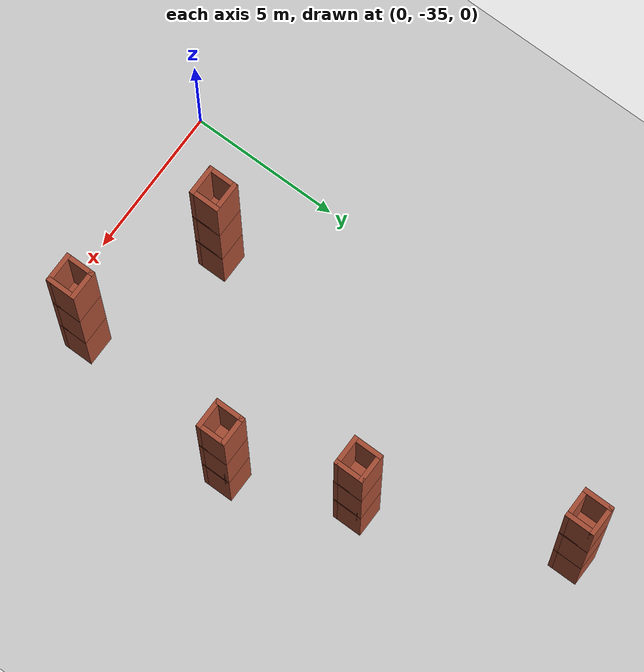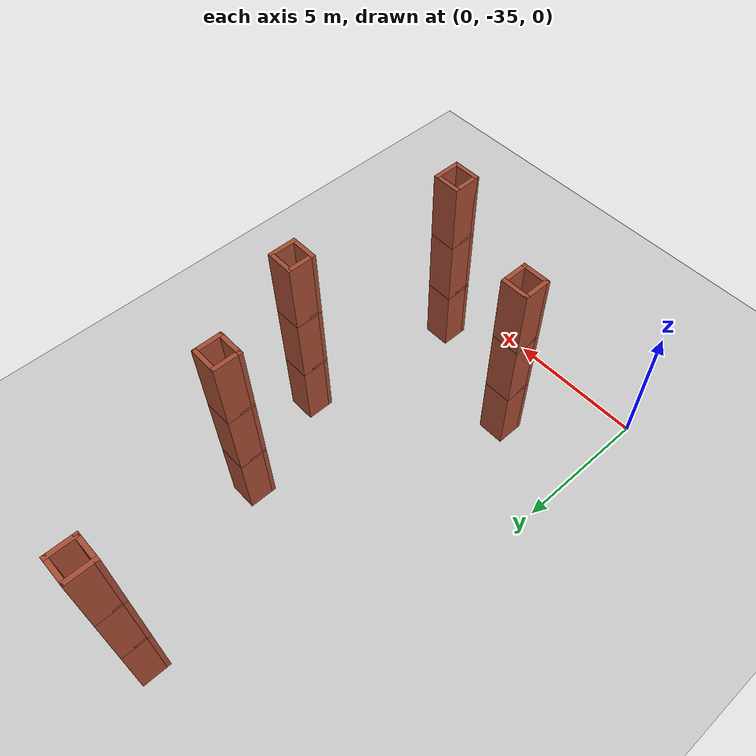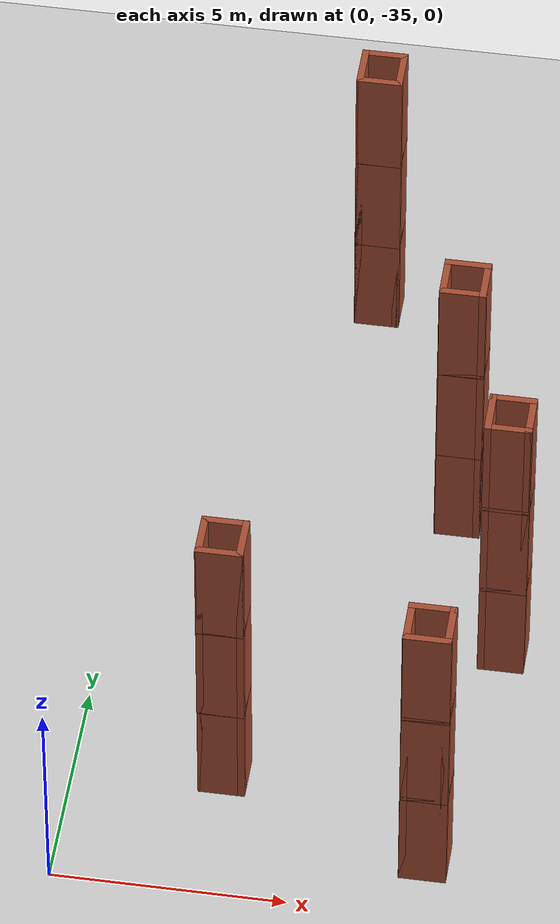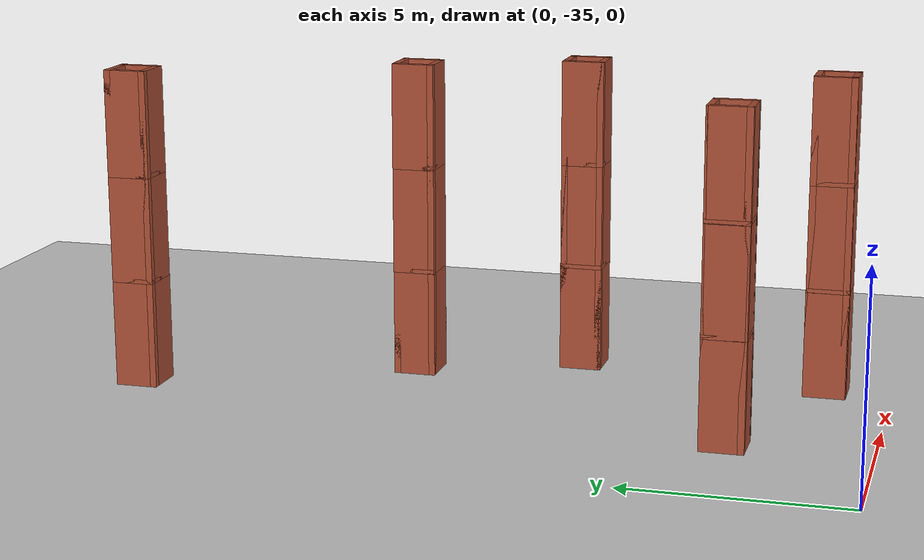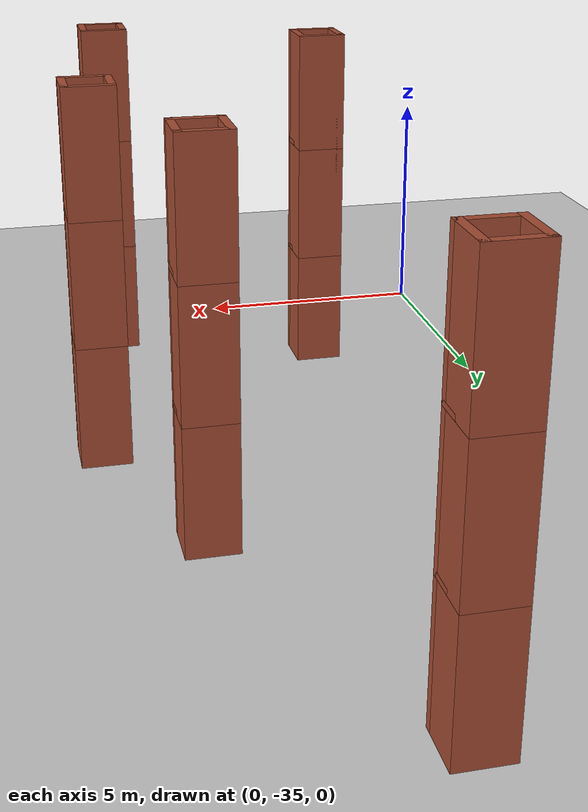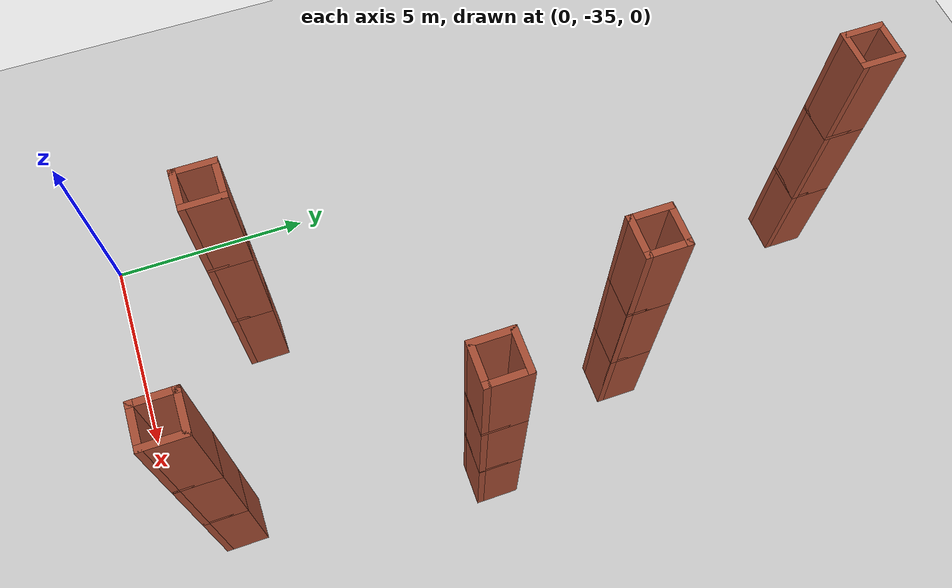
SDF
<sdf version="1.7">
 <world name="default">
  <model name="ground_plane">
   <static>1</static>
   <link name="link">
    <collision name="collision">
     <geometry><plane><normal>0 0 1</normal><size>100 100</size></plane></geometry>
     <surface>
      <contact><collide_bitmask>65535</collide_bitmask></contact>
      <friction><ode><mu>100</mu><mu2>50</mu2></ode></friction>
     </surface>
    </collision>
    <visual name="visual">
     <cast_shadows>0</cast_shadows>
     <geometry><plane><normal>0 0 1</normal><size>100 100</size></plane></geometry>
     <material>
      <script><uri>file://media/materials/scripts/gazebo.material</uri><name>Gazebo/Grey</name></script>
     </material>
    </visual>
   </link>
  </model>
  <model name="wall_model_clone">
   <pose>6.41502 -32.412 0 0 -0 0</pose>
   <link name="Floor_3">
    <collision name="Floor_3_Collision">
     <geometry><box><size>1 1 0.1</size></box></geometry>
     <pose>0 0 0.05 0 -0 0</pose>
    </collision>
    <visual name="Floor_3_Visual">
     <pose>0 0 0.05 0 -0 0</pose>
     <geometry><box><size>1 1 0.1</size></box></geometry>
     <material>
      <script><uri>file://media/materials/scripts/gazebo.material</uri><name>Gazebo/Bricks</name></script>
      <ambient>1 1 1 1</ambient>
     </material>
     <meta><layer>1</layer></meta>
    </visual>
    <pose>-3.21504 0.623396 2.5 0 -0 0</pose>
   </link>
   <link name="Floor_4">
    <collision name="Floor_4_Collision">
     <geometry><box><size>1 1 0.1</size></box></geometry>
     <pose>0 0 0.05 0 -0 0</pose>
    </collision>
    <visual name="Floor_4_Visual">
     <pose>0 0 0.05 0 -0 0</pose>
     <geometry><box><size>1 1 0.1</size></box></geometry>
     <material>
      <script><uri>file://media/materials/scripts/gazebo.material</uri><name>Gazebo/Bricks</name></script>
      <ambient>1 1 1 1</ambient>
     </material>
     <meta><layer>2</layer></meta>
    </visual>
    <pose>-3.21504 0.623396 5 0 -0 0</pose>
   </link>
   <link name="Wall_19">
    <collision name="Wall_19_Collision">
     <geometry><box><size>1 0.15 2.5</size></box></geometry>
     <pose>0 0 1.25 0 -0 0</pose>
    </collision>
    <visual name="Wall_19_Visual">
     <pose>0 0 1.25 0 -0 0</pose>
     <geometry><box><size>1 0.15 2.5</size></box></geometry>
     <material>
      <script><uri>file://media/materials/scripts/gazebo.material</uri><name>Gazebo/Bricks</name></script>
      <ambient>1 1 1 1</ambient>
     </material>
     <meta><layer>0</layer></meta>
    </visual>
    <pose>-3.64004 0.623396 0 0 -0 1.5708</pose>
   </link>
   <link name="Wall_21">
    <collision name="Wall_21_Collision">
     <geometry><box><size>1 0.15 2.5</size></box></geometry>
     <pose>0 0 1.25 0 -0 0</pose>
    </collision>
    <visual name="Wall_21_Visual">
     <pose>0 0 1.25 0 -0 0</pose>
     <geometry><box><size>1 0.15 2.5</size></box></geometry>
     <material>
      <script><uri>file://media/materials/scripts/gazebo.material</uri><name>Gazebo/Bricks</name></script>
      <ambient>1 1 1 1</ambient>
     </material>
     <meta><layer>0</layer></meta>
    </visual>
    <pose>-3.21504 1.0484 0 0 -0 0</pose>
   </link>
   <link name="Wall_22">
    <collision name="Wall_22_Collision">
     <geometry><box><size>1 0.15 2.5</size></box></geometry>
     <pose>0 0 1.25 0 -0 0</pose>
    </collision>
    <visual name="Wall_22_Visual">
     <pose>0 0 1.25 0 -0 0</pose>
     <geometry><box><size>1 0.15 2.5</size></box></geometry>
     <material>
      <script><uri>file://media/materials/scripts/gazebo.material</uri><name>Gazebo/Bricks</name></script>
      <ambient>1 1 1 1</ambient>
     </material>
     <meta><layer>0</layer></meta>
    </visual>
    <pose>-2.79004 0.623396 0 0 -0 -1.5708</pose>
   </link>
   <link name="Wall_23">
    <collision name="Wall_23_Collision">
     <geometry><box><size>1 0.15 2.5</size></box></geometry>
     <pose>0 0 1.25 0 -0 0</pose>
    </collision>
    <visual name="Wall_23_Visual">
     <pose>0 0 1.25 0 -0 0</pose>
     <geometry><box><size>1 0.15 2.5</size></box></geometry>
     <material>
      <script><uri>file://media/materials/scripts/gazebo.material</uri><name>Gazebo/Bricks</name></script>
      <ambient>1 1 1 1</ambient>
     </material>
     <meta><layer>0</layer></meta>
    </visual>
    <pose>-3.21504 0.198396 0 0 -0 3.14159</pose>
   </link>
   <link name="Wall_25">
    <collision name="Wall_25_Collision">
     <geometry><box><size>1 0.15 2.5</size></box></geometry>
     <pose>0 0 1.25 0 -0 0</pose>
    </collision>
    <visual name="Wall_25_Visual">
     <pose>0 0 1.25 0 -0 0</pose>
     <geometry><box><size>1 0.15 2.5</size></box></geometry>
     <material>
      <script><uri>file://media/materials/scripts/gazebo.material</uri><name>Gazebo/Bricks</name></script>
      <ambient>1 1 1 1</ambient>
     </material>
     <meta><layer>1</layer></meta>
    </visual>
    <pose>-3.64004 0.623396 2.5 0 -0 1.5708</pose>
   </link>
   <link name="Wall_26">
    <collision name="Wall_26_Collision">
     <geometry><box><size>1 0.15 2.5</size></box></geometry>
     <pose>0 0 1.25 0 -0 0</pose>
    </collision>
    <visual name="Wall_26_Visual">
     <pose>0 0 1.25 0 -0 0</pose>
     <geometry><box><size>1 0.15 2.5</size></box></geometry>
     <material>
      <script><uri>file://media/materials/scripts/gazebo.material</uri><name>Gazebo/Bricks</name></script>
      <ambient>1 1 1 1</ambient>
     </material>
     <meta><layer>1</layer></meta>
    </visual>
    <pose>-3.21504 1.0484 2.5 0 -0 0</pose>
   </link>
   <link name="Wall_27">
    <collision name="Wall_27_Collision">
     <geometry><box><size>1 0.15 2.5</size></box></geometry>
     <pose>0 0 1.25 0 -0 0</pose>
    </collision>
    <visual name="Wall_27_Visual">
     <pose>0 0 1.25 0 -0 0</pose>
     <geometry><box><size>1 0.15 2.5</size></box></geometry>
     <material>
      <script><uri>file://media/materials/scripts/gazebo.material</uri><name>Gazebo/Bricks</name></script>
      <ambient>1 1 1 1</ambient>
     </material>
     <meta><layer>1</layer></meta>
    </visual>
    <pose>-2.79004 0.623396 2.5 0 -0 -1.5708</pose>
   </link>
   <link name="Wall_28">
    <collision name="Wall_28_Collision">
     <geometry><box><size>1 0.15 2.5</size></box></geometry>
     <pose>0 0 1.25 0 -0 0</pose>
    </collision>
    <visual name="Wall_28_Visual">
     <pose>0 0 1.25 0 -0 0</pose>
     <geometry><box><size>1 0.15 2.5</size></box></geometry>
     <material>
      <script><uri>file://media/materials/scripts/gazebo.material</uri><name>Gazebo/Bricks</name></script>
      <ambient>1 1 1 1</ambient>
     </material>
     <meta><layer>1</layer></meta>
    </visual>
    <pose>-3.21504 0.198396 2.5 0 -0 3.14159</pose>
   </link>
   <link name="Wall_29">
    <collision name="Wall_29_Collision">
     <geometry><box><size>1 0.15 2.5</size></box></geometry>
     <pose>0 0 1.25 0 -0 0</pose>
    </collision>
    <visual name="Wall_29_Visual">
     <pose>0 0 1.25 0 -0 0</pose>
     <geometry><box><size>1 0.15 2.5</size></box></geometry>
     <material>
      <script><uri>file://media/materials/scripts/gazebo.material</uri><name>Gazebo/Bricks</name></script>
      <ambient>1 1 1 1</ambient>
     </material>
     <meta><layer>2</layer></meta>
    </visual>
    <pose>-3.64004 0.623396 5 0 -0 1.5708</pose>
   </link>
   <link name="Wall_30">
    <collision name="Wall_30_Collision">
     <geometry><box><size>1 0.15 2.5</size></box></geometry>
     <pose>0 0 1.25 0 -0 0</pose>
    </collision>
    <visual name="Wall_30_Visual">
     <pose>0 0 1.25 0 -0 0</pose>
     <geometry><box><size>1 0.15 2.5</size></box></geometry>
     <material>
      <script><uri>file://media/materials/scripts/gazebo.material</uri><name>Gazebo/Bricks</name></script>
      <ambient>1 1 1 1</ambient>
     </material>
     <meta><layer>2</layer></meta>
    </visual>
    <pose>-3.21504 1.0484 5 0 -0 0</pose>
   </link>
   <link name="Wall_31">
    <collision name="Wall_31_Collision">
     <geometry><box><size>1 0.15 2.5</size></box></geometry>
     <pose>0 0 1.25 0 -0 0</pose>
    </collision>
    <visual name="Wall_31_Visual">
     <pose>0 0 1.25 0 -0 0</pose>
     <geometry><box><size>1 0.15 2.5</size></box></geometry>
     <material>
      <script><uri>file://media/materials/scripts/gazebo.material</uri><name>Gazebo/Bricks</name></script>
      <ambient>1 1 1 1</ambient>
     </material>
     <meta><layer>2</layer></meta>
    </visual>
    <pose>-2.79004 0.623396 5 0 -0 -1.5708</pose>
   </link>
   <link name="Wall_32">
    <collision name="Wall_32_Collision">
     <geometry><box><size>1 0.15 2.5</size></box></geometry>
     <pose>0 0 1.25 0 -0 0</pose>
    </collision>
    <visual name="Wall_32_Visual">
     <pose>0 0 1.25 0 -0 0</pose>
     <geometry><box><size>1 0.15 2.5</size></box></geometry>
     <material>
      <script><uri>file://media/materials/scripts/gazebo.material</uri><name>Gazebo/Bricks</name></script>
      <ambient>1 1 1 1</ambient>
     </material>
     <meta><layer>2</layer></meta>
    </visual>
    <pose>-3.21504 0.198396 5 0 -0 3.14159</pose>
   </link>
   <static>1</static>
  </model>
  <model name="wall_model_clone_0">
   <pose>10.9073 -34.1128 0 0 -0 0</pose>
   <link name="Floor_3">
    <collision name="Floor_3_Collision">
     <geometry><box><size>1 1 0.1</size></box></geometry>
     <pose>0 0 0.05 0 -0 0</pose>
    </collision>
    <visual name="Floor_3_Visual">
     <pose>0 0 0.05 0 -0 0</pose>
     <geometry><box><size>1 1 0.1</size></box></geometry>
     <material>
      <script><uri>file://media/materials/scripts/gazebo.material</uri><name>Gazebo/Bricks</name></script>
      <ambient>1 1 1 1</ambient>
     </material>
     <meta><layer>1</layer></meta>
    </visual>
    <pose>-3.21504 0.623396 2.5 0 -0 0</pose>
   </link>
   <link name="Floor_4">
    <collision name="Floor_4_Collision">
     <geometry><box><size>1 1 0.1</size></box></geometry>
     <pose>0 0 0.05 0 -0 0</pose>
    </collision>
    <visual name="Floor_4_Visual">
     <pose>0 0 0.05 0 -0 0</pose>
     <geometry><box><size>1 1 0.1</size></box></geometry>
     <material>
      <script><uri>file://media/materials/scripts/gazebo.material</uri><name>Gazebo/Bricks</name></script>
      <ambient>1 1 1 1</ambient>
     </material>
     <meta><layer>2</layer></meta>
    </visual>
    <pose>-3.21504 0.623396 5 0 -0 0</pose>
   </link>
   <link name="Wall_19">
    <collision name="Wall_19_Collision">
     <geometry><box><size>1 0.15 2.5</size></box></geometry>
     <pose>0 0 1.25 0 -0 0</pose>
    </collision>
    <visual name="Wall_19_Visual">
     <pose>0 0 1.25 0 -0 0</pose>
     <geometry><box><size>1 0.15 2.5</size></box></geometry>
     <material>
      <script><uri>file://media/materials/scripts/gazebo.material</uri><name>Gazebo/Bricks</name></script>
      <ambient>1 1 1 1</ambient>
     </material>
     <meta><layer>0</layer></meta>
    </visual>
    <pose>-3.64004 0.623396 0 0 -0 1.5708</pose>
   </link>
   <link name="Wall_21">
    <collision name="Wall_21_Collision">
     <geometry><box><size>1 0.15 2.5</size></box></geometry>
     <pose>0 0 1.25 0 -0 0</pose>
    </collision>
    <visual name="Wall_21_Visual">
     <pose>0 0 1.25 0 -0 0</pose>
     <geometry><box><size>1 0.15 2.5</size></box></geometry>
     <material>
      <script><uri>file://media/materials/scripts/gazebo.material</uri><name>Gazebo/Bricks</name></script>
      <ambient>1 1 1 1</ambient>
     </material>
     <meta><layer>0</layer></meta>
    </visual>
    <pose>-3.21504 1.0484 0 0 -0 0</pose>
   </link>
   <link name="Wall_22">
    <collision name="Wall_22_Collision">
     <geometry><box><size>1 0.15 2.5</size></box></geometry>
     <pose>0 0 1.25 0 -0 0</pose>
    </collision>
    <visual name="Wall_22_Visual">
     <pose>0 0 1.25 0 -0 0</pose>
     <geometry><box><size>1 0.15 2.5</size></box></geometry>
     <material>
      <script><uri>file://media/materials/scripts/gazebo.material</uri><name>Gazebo/Bricks</name></script>
      <ambient>1 1 1 1</ambient>
     </material>
     <meta><layer>0</layer></meta>
    </visual>
    <pose>-2.79004 0.623396 0 0 -0 -1.5708</pose>
   </link>
   <link name="Wall_23">
    <collision name="Wall_23_Collision">
     <geometry><box><size>1 0.15 2.5</size></box></geometry>
     <pose>0 0 1.25 0 -0 0</pose>
    </collision>
    <visual name="Wall_23_Visual">
     <pose>0 0 1.25 0 -0 0</pose>
     <geometry><box><size>1 0.15 2.5</size></box></geometry>
     <material>
      <script><uri>file://media/materials/scripts/gazebo.material</uri><name>Gazebo/Bricks</name></script>
      <ambient>1 1 1 1</ambient>
     </material>
     <meta><layer>0</layer></meta>
    </visual>
    <pose>-3.21504 0.198396 0 0 -0 3.14159</pose>
   </link>
   <link name="Wall_25">
    <collision name="Wall_25_Collision">
     <geometry><box><size>1 0.15 2.5</size></box></geometry>
     <pose>0 0 1.25 0 -0 0</pose>
    </collision>
    <visual name="Wall_25_Visual">
     <pose>0 0 1.25 0 -0 0</pose>
     <geometry><box><size>1 0.15 2.5</size></box></geometry>
     <material>
      <script><uri>file://media/materials/scripts/gazebo.material</uri><name>Gazebo/Bricks</name></script>
      <ambient>1 1 1 1</ambient>
     </material>
     <meta><layer>1</layer></meta>
    </visual>
    <pose>-3.64004 0.623396 2.5 0 -0 1.5708</pose>
   </link>
   <link name="Wall_26">
    <collision name="Wall_26_Collision">
     <geometry><box><size>1 0.15 2.5</size></box></geometry>
     <pose>0 0 1.25 0 -0 0</pose>
    </collision>
    <visual name="Wall_26_Visual">
     <pose>0 0 1.25 0 -0 0</pose>
     <geometry><box><size>1 0.15 2.5</size></box></geometry>
     <material>
      <script><uri>file://media/materials/scripts/gazebo.material</uri><name>Gazebo/Bricks</name></script>
      <ambient>1 1 1 1</ambient>
     </material>
     <meta><layer>1</layer></meta>
    </visual>
    <pose>-3.21504 1.0484 2.5 0 -0 0</pose>
   </link>
   <link name="Wall_27">
    <collision name="Wall_27_Collision">
     <geometry><box><size>1 0.15 2.5</size></box></geometry>
     <pose>0 0 1.25 0 -0 0</pose>
    </collision>
    <visual name="Wall_27_Visual">
     <pose>0 0 1.25 0 -0 0</pose>
     <geometry><box><size>1 0.15 2.5</size></box></geometry>
     <material>
      <script><uri>file://media/materials/scripts/gazebo.material</uri><name>Gazebo/Bricks</name></script>
      <ambient>1 1 1 1</ambient>
     </material>
     <meta><layer>1</layer></meta>
    </visual>
    <pose>-2.79004 0.623396 2.5 0 -0 -1.5708</pose>
   </link>
   <link name="Wall_28">
    <collision name="Wall_28_Collision">
     <geometry><box><size>1 0.15 2.5</size></box></geometry>
     <pose>0 0 1.25 0 -0 0</pose>
    </collision>
    <visual name="Wall_28_Visual">
     <pose>0 0 1.25 0 -0 0</pose>
     <geometry><box><size>1 0.15 2.5</size></box></geometry>
     <material>
      <script><uri>file://media/materials/scripts/gazebo.material</uri><name>Gazebo/Bricks</name></script>
      <ambient>1 1 1 1</ambient>
     </material>
     <meta><layer>1</layer></meta>
    </visual>
    <pose>-3.21504 0.198396 2.5 0 -0 3.14159</pose>
   </link>
   <link name="Wall_29">
    <collision name="Wall_29_Collision">
     <geometry><box><size>1 0.15 2.5</size></box></geometry>
     <pose>0 0 1.25 0 -0 0</pose>
    </collision>
    <visual name="Wall_29_Visual">
     <pose>0 0 1.25 0 -0 0</pose>
     <geometry><box><size>1 0.15 2.5</size></box></geometry>
     <material>
      <script><uri>file://media/materials/scripts/gazebo.material</uri><name>Gazebo/Bricks</name></script>
      <ambient>1 1 1 1</ambient>
     </material>
     <meta><layer>2</layer></meta>
    </visual>
    <pose>-3.64004 0.623396 5 0 -0 1.5708</pose>
   </link>
   <link name="Wall_30">
    <collision name="Wall_30_Collision">
     <geometry><box><size>1 0.15 2.5</size></box></geometry>
     <pose>0 0 1.25 0 -0 0</pose>
    </collision>
    <visual name="Wall_30_Visual">
     <pose>0 0 1.25 0 -0 0</pose>
     <geometry><box><size>1 0.15 2.5</size></box></geometry>
     <material>
      <script><uri>file://media/materials/scripts/gazebo.material</uri><name>Gazebo/Bricks</name></script>
      <ambient>1 1 1 1</ambient>
     </material>
     <meta><layer>2</layer></meta>
    </visual>
    <pose>-3.21504 1.0484 5 0 -0 0</pose>
   </link>
   <link name="Wall_31">
    <collision name="Wall_31_Collision">
     <geometry><box><size>1 0.15 2.5</size></box></geometry>
     <pose>0 0 1.25 0 -0 0</pose>
    </collision>
    <visual name="Wall_31_Visual">
     <pose>0 0 1.25 0 -0 0</pose>
     <geometry><box><size>1 0.15 2.5</size></box></geometry>
     <material>
      <script><uri>file://media/materials/scripts/gazebo.material</uri><name>Gazebo/Bricks</name></script>
      <ambient>1 1 1 1</ambient>
     </material>
     <meta><layer>2</layer></meta>
    </visual>
    <pose>-2.79004 0.623396 5 0 -0 -1.5708</pose>
   </link>
   <link name="Wall_32">
    <collision name="Wall_32_Collision">
     <geometry><box><size>1 0.15 2.5</size></box></geometry>
     <pose>0 0 1.25 0 -0 0</pose>
    </collision>
    <visual name="Wall_32_Visual">
     <pose>0 0 1.25 0 -0 0</pose>
     <geometry><box><size>1 0.15 2.5</size></box></geometry>
     <material>
      <script><uri>file://media/materials/scripts/gazebo.material</uri><name>Gazebo/Bricks</name></script>
      <ambient>1 1 1 1</ambient>
     </material>
     <meta><layer>2</layer></meta>
    </visual>
    <pose>-3.21504 0.198396 5 0 -0 3.14159</pose>
   </link>
   <static>1</static>
  </model>
  <model name="wall_model_clone_1">
   <pose>11.7691 -28.1348 0 0 -0 0</pose>
   <link name="Floor_3">
    <collision name="Floor_3_Collision">
     <geometry><box><size>1 1 0.1</size></box></geometry>
     <pose>0 0 0.05 0 -0 0</pose>
    </collision>
    <visual name="Floor_3_Visual">
     <pose>0 0 0.05 0 -0 0</pose>
     <geometry><box><size>1 1 0.1</size></box></geometry>
     <material>
      <script><uri>file://media/materials/scripts/gazebo.material</uri><name>Gazebo/Bricks</name></script>
      <ambient>1 1 1 1</ambient>
     </material>
     <meta><layer>1</layer></meta>
    </visual>
    <pose>-3.21504 0.623396 2.5 0 -0 0</pose>
   </link>
   <link name="Floor_4">
    <collision name="Floor_4_Collision">
     <geometry><box><size>1 1 0.1</size></box></geometry>
     <pose>0 0 0.05 0 -0 0</pose>
    </collision>
    <visual name="Floor_4_Visual">
     <pose>0 0 0.05 0 -0 0</pose>
     <geometry><box><size>1 1 0.1</size></box></geometry>
     <material>
      <script><uri>file://media/materials/scripts/gazebo.material</uri><name>Gazebo/Bricks</name></script>
      <ambient>1 1 1 1</ambient>
     </material>
     <meta><layer>2</layer></meta>
    </visual>
    <pose>-3.21504 0.623396 5 0 -0 0</pose>
   </link>
   <link name="Wall_19">
    <collision name="Wall_19_Collision">
     <geometry><box><size>1 0.15 2.5</size></box></geometry>
     <pose>0 0 1.25 0 -0 0</pose>
    </collision>
    <visual name="Wall_19_Visual">
     <pose>0 0 1.25 0 -0 0</pose>
     <geometry><box><size>1 0.15 2.5</size></box></geometry>
     <material>
      <script><uri>file://media/materials/scripts/gazebo.material</uri><name>Gazebo/Bricks</name></script>
      <ambient>1 1 1 1</ambient>
     </material>
     <meta><layer>0</layer></meta>
    </visual>
    <pose>-3.64004 0.623396 0 0 -0 1.5708</pose>
   </link>
   <link name="Wall_21">
    <collision name="Wall_21_Collision">
     <geometry><box><size>1 0.15 2.5</size></box></geometry>
     <pose>0 0 1.25 0 -0 0</pose>
    </collision>
    <visual name="Wall_21_Visual">
     <pose>0 0 1.25 0 -0 0</pose>
     <geometry><box><size>1 0.15 2.5</size></box></geometry>
     <material>
      <script><uri>file://media/materials/scripts/gazebo.material</uri><name>Gazebo/Bricks</name></script>
      <ambient>1 1 1 1</ambient>
     </material>
     <meta><layer>0</layer></meta>
    </visual>
    <pose>-3.21504 1.0484 0 0 -0 0</pose>
   </link>
   <link name="Wall_22">
    <collision name="Wall_22_Collision">
     <geometry><box><size>1 0.15 2.5</size></box></geometry>
     <pose>0 0 1.25 0 -0 0</pose>
    </collision>
    <visual name="Wall_22_Visual">
     <pose>0 0 1.25 0 -0 0</pose>
     <geometry><box><size>1 0.15 2.5</size></box></geometry>
     <material>
      <script><uri>file://media/materials/scripts/gazebo.material</uri><name>Gazebo/Bricks</name></script>
      <ambient>1 1 1 1</ambient>
     </material>
     <meta><layer>0</layer></meta>
    </visual>
    <pose>-2.79004 0.623396 0 0 -0 -1.5708</pose>
   </link>
   <link name="Wall_23">
    <collision name="Wall_23_Collision">
     <geometry><box><size>1 0.15 2.5</size></box></geometry>
     <pose>0 0 1.25 0 -0 0</pose>
    </collision>
    <visual name="Wall_23_Visual">
     <pose>0 0 1.25 0 -0 0</pose>
     <geometry><box><size>1 0.15 2.5</size></box></geometry>
     <material>
      <script><uri>file://media/materials/scripts/gazebo.material</uri><name>Gazebo/Bricks</name></script>
      <ambient>1 1 1 1</ambient>
     </material>
     <meta><layer>0</layer></meta>
    </visual>
    <pose>-3.21504 0.198396 0 0 -0 3.14159</pose>
   </link>
   <link name="Wall_25">
    <collision name="Wall_25_Collision">
     <geometry><box><size>1 0.15 2.5</size></box></geometry>
     <pose>0 0 1.25 0 -0 0</pose>
    </collision>
    <visual name="Wall_25_Visual">
     <pose>0 0 1.25 0 -0 0</pose>
     <geometry><box><size>1 0.15 2.5</size></box></geometry>
     <material>
      <script><uri>file://media/materials/scripts/gazebo.material</uri><name>Gazebo/Bricks</name></script>
      <ambient>1 1 1 1</ambient>
     </material>
     <meta><layer>1</layer></meta>
    </visual>
    <pose>-3.64004 0.623396 2.5 0 -0 1.5708</pose>
   </link>
   <link name="Wall_26">
    <collision name="Wall_26_Collision">
     <geometry><box><size>1 0.15 2.5</size></box></geometry>
     <pose>0 0 1.25 0 -0 0</pose>
    </collision>
    <visual name="Wall_26_Visual">
     <pose>0 0 1.25 0 -0 0</pose>
     <geometry><box><size>1 0.15 2.5</size></box></geometry>
     <material>
      <script><uri>file://media/materials/scripts/gazebo.material</uri><name>Gazebo/Bricks</name></script>
      <ambient>1 1 1 1</ambient>
     </material>
     <meta><layer>1</layer></meta>
    </visual>
    <pose>-3.21504 1.0484 2.5 0 -0 0</pose>
   </link>
   <link name="Wall_27">
    <collision name="Wall_27_Collision">
     <geometry><box><size>1 0.15 2.5</size></box></geometry>
     <pose>0 0 1.25 0 -0 0</pose>
    </collision>
    <visual name="Wall_27_Visual">
     <pose>0 0 1.25 0 -0 0</pose>
     <geometry><box><size>1 0.15 2.5</size></box></geometry>
     <material>
      <script><uri>file://media/materials/scripts/gazebo.material</uri><name>Gazebo/Bricks</name></script>
      <ambient>1 1 1 1</ambient>
     </material>
     <meta><layer>1</layer></meta>
    </visual>
    <pose>-2.79004 0.623396 2.5 0 -0 -1.5708</pose>
   </link>
   <link name="Wall_28">
    <collision name="Wall_28_Collision">
     <geometry><box><size>1 0.15 2.5</size></box></geometry>
     <pose>0 0 1.25 0 -0 0</pose>
    </collision>
    <visual name="Wall_28_Visual">
     <pose>0 0 1.25 0 -0 0</pose>
     <geometry><box><size>1 0.15 2.5</size></box></geometry>
     <material>
      <script><uri>file://media/materials/scripts/gazebo.material</uri><name>Gazebo/Bricks</name></script>
      <ambient>1 1 1 1</ambient>
     </material>
     <meta><layer>1</layer></meta>
    </visual>
    <pose>-3.21504 0.198396 2.5 0 -0 3.14159</pose>
   </link>
   <link name="Wall_29">
    <collision name="Wall_29_Collision">
     <geometry><box><size>1 0.15 2.5</size></box></geometry>
     <pose>0 0 1.25 0 -0 0</pose>
    </collision>
    <visual name="Wall_29_Visual">
     <pose>0 0 1.25 0 -0 0</pose>
     <geometry><box><size>1 0.15 2.5</size></box></geometry>
     <material>
      <script><uri>file://media/materials/scripts/gazebo.material</uri><name>Gazebo/Bricks</name></script>
      <ambient>1 1 1 1</ambient>
     </material>
     <meta><layer>2</layer></meta>
    </visual>
    <pose>-3.64004 0.623396 5 0 -0 1.5708</pose>
   </link>
   <link name="Wall_30">
    <collision name="Wall_30_Collision">
     <geometry><box><size>1 0.15 2.5</size></box></geometry>
     <pose>0 0 1.25 0 -0 0</pose>
    </collision>
    <visual name="Wall_30_Visual">
     <pose>0 0 1.25 0 -0 0</pose>
     <geometry><box><size>1 0.15 2.5</size></box></geometry>
     <material>
      <script><uri>file://media/materials/scripts/gazebo.material</uri><name>Gazebo/Bricks</name></script>
      <ambient>1 1 1 1</ambient>
     </material>
     <meta><layer>2</layer></meta>
    </visual>
    <pose>-3.21504 1.0484 5 0 -0 0</pose>
   </link>
   <link name="Wall_31">
    <collision name="Wall_31_Collision">
     <geometry><box><size>1 0.15 2.5</size></box></geometry>
     <pose>0 0 1.25 0 -0 0</pose>
    </collision>
    <visual name="Wall_31_Visual">
     <pose>0 0 1.25 0 -0 0</pose>
     <geometry><box><size>1 0.15 2.5</size></box></geometry>
     <material>
      <script><uri>file://media/materials/scripts/gazebo.material</uri><name>Gazebo/Bricks</name></script>
      <ambient>1 1 1 1</ambient>
     </material>
     <meta><layer>2</layer></meta>
    </visual>
    <pose>-2.79004 0.623396 5 0 -0 -1.5708</pose>
   </link>
   <link name="Wall_32">
    <collision name="Wall_32_Collision">
     <geometry><box><size>1 0.15 2.5</size></box></geometry>
     <pose>0 0 1.25 0 -0 0</pose>
    </collision>
    <visual name="Wall_32_Visual">
     <pose>0 0 1.25 0 -0 0</pose>
     <geometry><box><size>1 0.15 2.5</size></box></geometry>
     <material>
      <script><uri>file://media/materials/scripts/gazebo.material</uri><name>Gazebo/Bricks</name></script>
      <ambient>1 1 1 1</ambient>
     </material>
     <meta><layer>2</layer></meta>
    </visual>
    <pose>-3.21504 0.198396 5 0 -0 3.14159</pose>
   </link>
   <static>1</static>
  </model>
  <model name="wall_model_clone_4">
   <pose>10.3232 -24.3891 0 0 -0 0</pose>
   <link name="Floor_3">
    <collision name="Floor_3_Collision">
     <geometry><box><size>1 1 0.1</size></box></geometry>
     <pose>0 0 0.05 0 -0 0</pose>
    </collision>
    <visual name="Floor_3_Visual">
     <pose>0 0 0.05 0 -0 0</pose>
     <geometry><box><size>1 1 0.1</size></box></geometry>
     <material>
      <script><uri>file://media/materials/scripts/gazebo.material</uri><name>Gazebo/Bricks</name></script>
      <ambient>1 1 1 1</ambient>
     </material>
     <meta><layer>1</layer></meta>
    </visual>
    <pose>-3.21504 0.623396 2.5 0 -0 0</pose>
   </link>
   <link name="Floor_4">
    <collision name="Floor_4_Collision">
     <geometry><box><size>1 1 0.1</size></box></geometry>
     <pose>0 0 0.05 0 -0 0</pose>
    </collision>
    <visual name="Floor_4_Visual">
     <pose>0 0 0.05 0 -0 0</pose>
     <geometry><box><size>1 1 0.1</size></box></geometry>
     <material>
      <script><uri>file://media/materials/scripts/gazebo.material</uri><name>Gazebo/Bricks</name></script>
      <ambient>1 1 1 1</ambient>
     </material>
     <meta><layer>2</layer></meta>
    </visual>
    <pose>-3.21504 0.623396 5 0 -0 0</pose>
   </link>
   <link name="Wall_19">
    <collision name="Wall_19_Collision">
     <geometry><box><size>1 0.15 2.5</size></box></geometry>
     <pose>0 0 1.25 0 -0 0</pose>
    </collision>
    <visual name="Wall_19_Visual">
     <pose>0 0 1.25 0 -0 0</pose>
     <geometry><box><size>1 0.15 2.5</size></box></geometry>
     <material>
      <script><uri>file://media/materials/scripts/gazebo.material</uri><name>Gazebo/Bricks</name></script>
      <ambient>1 1 1 1</ambient>
     </material>
     <meta><layer>0</layer></meta>
    </visual>
    <pose>-3.64004 0.623396 0 0 -0 1.5708</pose>
   </link>
   <link name="Wall_21">
    <collision name="Wall_21_Collision">
     <geometry><box><size>1 0.15 2.5</size></box></geometry>
     <pose>0 0 1.25 0 -0 0</pose>
    </collision>
    <visual name="Wall_21_Visual">
     <pose>0 0 1.25 0 -0 0</pose>
     <geometry><box><size>1 0.15 2.5</size></box></geometry>
     <material>
      <script><uri>file://media/materials/scripts/gazebo.material</uri><name>Gazebo/Bricks</name></script>
      <ambient>1 1 1 1</ambient>
     </material>
     <meta><layer>0</layer></meta>
    </visual>
    <pose>-3.21504 1.0484 0 0 -0 0</pose>
   </link>
   <link name="Wall_22">
    <collision name="Wall_22_Collision">
     <geometry><box><size>1 0.15 2.5</size></box></geometry>
     <pose>0 0 1.25 0 -0 0</pose>
    </collision>
    <visual name="Wall_22_Visual">
     <pose>0 0 1.25 0 -0 0</pose>
     <geometry><box><size>1 0.15 2.5</size></box></geometry>
     <material>
      <script><uri>file://media/materials/scripts/gazebo.material</uri><name>Gazebo/Bricks</name></script>
      <ambient>1 1 1 1</ambient>
     </material>
     <meta><layer>0</layer></meta>
    </visual>
    <pose>-2.79004 0.623396 0 0 -0 -1.5708</pose>
   </link>
   <link name="Wall_23">
    <collision name="Wall_23_Collision">
     <geometry><box><size>1 0.15 2.5</size></box></geometry>
     <pose>0 0 1.25 0 -0 0</pose>
    </collision>
    <visual name="Wall_23_Visual">
     <pose>0 0 1.25 0 -0 0</pose>
     <geometry><box><size>1 0.15 2.5</size></box></geometry>
     <material>
      <script><uri>file://media/materials/scripts/gazebo.material</uri><name>Gazebo/Bricks</name></script>
      <ambient>1 1 1 1</ambient>
     </material>
     <meta><layer>0</layer></meta>
    </visual>
    <pose>-3.21504 0.198396 0 0 -0 3.14159</pose>
   </link>
   <link name="Wall_25">
    <collision name="Wall_25_Collision">
     <geometry><box><size>1 0.15 2.5</size></box></geometry>
     <pose>0 0 1.25 0 -0 0</pose>
    </collision>
    <visual name="Wall_25_Visual">
     <pose>0 0 1.25 0 -0 0</pose>
     <geometry><box><size>1 0.15 2.5</size></box></geometry>
     <material>
      <script><uri>file://media/materials/scripts/gazebo.material</uri><name>Gazebo/Bricks</name></script>
      <ambient>1 1 1 1</ambient>
     </material>
     <meta><layer>1</layer></meta>
    </visual>
    <pose>-3.64004 0.623396 2.5 0 -0 1.5708</pose>
   </link>
   <link name="Wall_26">
    <collision name="Wall_26_Collision">
     <geometry><box><size>1 0.15 2.5</size></box></geometry>
     <pose>0 0 1.25 0 -0 0</pose>
    </collision>
    <visual name="Wall_26_Visual">
     <pose>0 0 1.25 0 -0 0</pose>
     <geometry><box><size>1 0.15 2.5</size></box></geometry>
     <material>
      <script><uri>file://media/materials/scripts/gazebo.material</uri><name>Gazebo/Bricks</name></script>
      <ambient>1 1 1 1</ambient>
     </material>
     <meta><layer>1</layer></meta>
    </visual>
    <pose>-3.21504 1.0484 2.5 0 -0 0</pose>
   </link>
   <link name="Wall_27">
    <collision name="Wall_27_Collision">
     <geometry><box><size>1 0.15 2.5</size></box></geometry>
     <pose>0 0 1.25 0 -0 0</pose>
    </collision>
    <visual name="Wall_27_Visual">
     <pose>0 0 1.25 0 -0 0</pose>
     <geometry><box><size>1 0.15 2.5</size></box></geometry>
     <material>
      <script><uri>file://media/materials/scripts/gazebo.material</uri><name>Gazebo/Bricks</name></script>
      <ambient>1 1 1 1</ambient>
     </material>
     <meta><layer>1</layer></meta>
    </visual>
    <pose>-2.79004 0.623396 2.5 0 -0 -1.5708</pose>
   </link>
   <link name="Wall_28">
    <collision name="Wall_28_Collision">
     <geometry><box><size>1 0.15 2.5</size></box></geometry>
     <pose>0 0 1.25 0 -0 0</pose>
    </collision>
    <visual name="Wall_28_Visual">
     <pose>0 0 1.25 0 -0 0</pose>
     <geometry><box><size>1 0.15 2.5</size></box></geometry>
     <material>
      <script><uri>file://media/materials/scripts/gazebo.material</uri><name>Gazebo/Bricks</name></script>
      <ambient>1 1 1 1</ambient>
     </material>
     <meta><layer>1</layer></meta>
    </visual>
    <pose>-3.21504 0.198396 2.5 0 -0 3.14159</pose>
   </link>
   <link name="Wall_29">
    <collision name="Wall_29_Collision">
     <geometry><box><size>1 0.15 2.5</size></box></geometry>
     <pose>0 0 1.25 0 -0 0</pose>
    </collision>
    <visual name="Wall_29_Visual">
     <pose>0 0 1.25 0 -0 0</pose>
     <geometry><box><size>1 0.15 2.5</size></box></geometry>
     <material>
      <script><uri>file://media/materials/scripts/gazebo.material</uri><name>Gazebo/Bricks</name></script>
      <ambient>1 1 1 1</ambient>
     </material>
     <meta><layer>2</layer></meta>
    </visual>
    <pose>-3.64004 0.623396 5 0 -0 1.5708</pose>
   </link>
   <link name="Wall_30">
    <collision name="Wall_30_Collision">
     <geometry><box><size>1 0.15 2.5</size></box></geometry>
     <pose>0 0 1.25 0 -0 0</pose>
    </collision>
    <visual name="Wall_30_Visual">
     <pose>0 0 1.25 0 -0 0</pose>
     <geometry><box><size>1 0.15 2.5</size></box></geometry>
     <material>
      <script><uri>file://media/materials/scripts/gazebo.material</uri><name>Gazebo/Bricks</name></script>
      <ambient>1 1 1 1</ambient>
     </material>
     <meta><layer>2</layer></meta>
    </visual>
    <pose>-3.21504 1.0484 5 0 -0 0</pose>
   </link>
   <link name="Wall_31">
    <collision name="Wall_31_Collision">
     <geometry><box><size>1 0.15 2.5</size></box></geometry>
     <pose>0 0 1.25 0 -0 0</pose>
    </collision>
    <visual name="Wall_31_Visual">
     <pose>0 0 1.25 0 -0 0</pose>
     <geometry><box><size>1 0.15 2.5</size></box></geometry>
     <material>
      <script><uri>file://media/materials/scripts/gazebo.material</uri><name>Gazebo/Bricks</name></script>
      <ambient>1 1 1 1</ambient>
     </material>
     <meta><layer>2</layer></meta>
    </visual>
    <pose>-2.79004 0.623396 5 0 -0 -1.5708</pose>
   </link>
   <link name="Wall_32">
    <collision name="Wall_32_Collision">
     <geometry><box><size>1 0.15 2.5</size></box></geometry>
     <pose>0 0 1.25 0 -0 0</pose>
    </collision>
    <visual name="Wall_32_Visual">
     <pose>0 0 1.25 0 -0 0</pose>
     <geometry><box><size>1 0.15 2.5</size></box></geometry>
     <material>
      <script><uri>file://media/materials/scripts/gazebo.material</uri><name>Gazebo/Bricks</name></script>
      <ambient>1 1 1 1</ambient>
     </material>
     <meta><layer>2</layer></meta>
    </visual>
    <pose>-3.21504 0.198396 5 0 -0 3.14159</pose>
   </link>
   <static>1</static>
  </model>
  <model name="wall_model_clone_11">
   <pose>7.69255 -18.3258 0 0 -0 0</pose>
   <link name="Floor_3">
    <collision name="Floor_3_Collision">
     <geometry><box><size>1 1 0.1</size></box></geometry>
     <pose>0 0 0.05 0 -0 0</pose>
    </collision>
    <visual name="Floor_3_Visual">
     <pose>0 0 0.05 0 -0 0</pose>
     <geometry><box><size>1 1 0.1</size></box></geometry>
     <material>
      <script><uri>file://media/materials/scripts/gazebo.material</uri><name>Gazebo/Bricks</name></script>
      <ambient>1 1 1 1</ambient>
     </material>
     <meta><layer>1</layer></meta>
    </visual>
    <pose>-3.21504 0.623396 2.5 0 -0 0</pose>
   </link>
   <link name="Floor_4">
    <collision name="Floor_4_Collision">
     <geometry><box><size>1 1 0.1</size></box></geometry>
     <pose>0 0 0.05 0 -0 0</pose>
    </collision>
    <visual name="Floor_4_Visual">
     <pose>0 0 0.05 0 -0 0</pose>
     <geometry><box><size>1 1 0.1</size></box></geometry>
     <material>
      <script><uri>file://media/materials/scripts/gazebo.material</uri><name>Gazebo/Bricks</name></script>
      <ambient>1 1 1 1</ambient>
     </material>
     <meta><layer>2</layer></meta>
    </visual>
    <pose>-3.21504 0.623396 5 0 -0 0</pose>
   </link>
   <link name="Wall_19">
    <collision name="Wall_19_Collision">
     <geometry><box><size>1 0.15 2.5</size></box></geometry>
     <pose>0 0 1.25 0 -0 0</pose>
    </collision>
    <visual name="Wall_19_Visual">
     <pose>0 0 1.25 0 -0 0</pose>
     <geometry><box><size>1 0.15 2.5</size></box></geometry>
     <material>
      <script><uri>file://media/materials/scripts/gazebo.material</uri><name>Gazebo/Bricks</name></script>
      <ambient>1 1 1 1</ambient>
     </material>
     <meta><layer>0</layer></meta>
    </visual>
    <pose>-3.64004 0.623396 0 0 -0 1.5708</pose>
   </link>
   <link name="Wall_21">
    <collision name="Wall_21_Collision">
     <geometry><box><size>1 0.15 2.5</size></box></geometry>
     <pose>0 0 1.25 0 -0 0</pose>
    </collision>
    <visual name="Wall_21_Visual">
     <pose>0 0 1.25 0 -0 0</pose>
     <geometry><box><size>1 0.15 2.5</size></box></geometry>
     <material>
      <script><uri>file://media/materials/scripts/gazebo.material</uri><name>Gazebo/Bricks</name></script>
      <ambient>1 1 1 1</ambient>
     </material>
     <meta><layer>0</layer></meta>
    </visual>
    <pose>-3.21504 1.0484 0 0 -0 0</pose>
   </link>
   <link name="Wall_22">
    <collision name="Wall_22_Collision">
     <geometry><box><size>1 0.15 2.5</size></box></geometry>
     <pose>0 0 1.25 0 -0 0</pose>
    </collision>
    <visual name="Wall_22_Visual">
     <pose>0 0 1.25 0 -0 0</pose>
     <geometry><box><size>1 0.15 2.5</size></box></geometry>
     <material>
      <script><uri>file://media/materials/scripts/gazebo.material</uri><name>Gazebo/Bricks</name></script>
      <ambient>1 1 1 1</ambient>
     </material>
     <meta><layer>0</layer></meta>
    </visual>
    <pose>-2.79004 0.623396 0 0 -0 -1.5708</pose>
   </link>
   <link name="Wall_23">
    <collision name="Wall_23_Collision">
     <geometry><box><size>1 0.15 2.5</size></box></geometry>
     <pose>0 0 1.25 0 -0 0</pose>
    </collision>
    <visual name="Wall_23_Visual">
     <pose>0 0 1.25 0 -0 0</pose>
     <geometry><box><size>1 0.15 2.5</size></box></geometry>
     <material>
      <script><uri>file://media/materials/scripts/gazebo.material</uri><name>Gazebo/Bricks</name></script>
      <ambient>1 1 1 1</ambient>
     </material>
     <meta><layer>0</layer></meta>
    </visual>
    <pose>-3.21504 0.198396 0 0 -0 3.14159</pose>
   </link>
   <link name="Wall_25">
    <collision name="Wall_25_Collision">
     <geometry><box><size>1 0.15 2.5</size></box></geometry>
     <pose>0 0 1.25 0 -0 0</pose>
    </collision>
    <visual name="Wall_25_Visual">
     <pose>0 0 1.25 0 -0 0</pose>
     <geometry><box><size>1 0.15 2.5</size></box></geometry>
     <material>
      <script><uri>file://media/materials/scripts/gazebo.material</uri><name>Gazebo/Bricks</name></script>
      <ambient>1 1 1 1</ambient>
     </material>
     <meta><layer>1</layer></meta>
    </visual>
    <pose>-3.64004 0.623396 2.5 0 -0 1.5708</pose>
   </link>
   <link name="Wall_26">
    <collision name="Wall_26_Collision">
     <geometry><box><size>1 0.15 2.5</size></box></geometry>
     <pose>0 0 1.25 0 -0 0</pose>
    </collision>
    <visual name="Wall_26_Visual">
     <pose>0 0 1.25 0 -0 0</pose>
     <geometry><box><size>1 0.15 2.5</size></box></geometry>
     <material>
      <script><uri>file://media/materials/scripts/gazebo.material</uri><name>Gazebo/Bricks</name></script>
      <ambient>1 1 1 1</ambient>
     </material>
     <meta><layer>1</layer></meta>
    </visual>
    <pose>-3.21504 1.0484 2.5 0 -0 0</pose>
   </link>
   <link name="Wall_27">
    <collision name="Wall_27_Collision">
     <geometry><box><size>1 0.15 2.5</size></box></geometry>
     <pose>0 0 1.25 0 -0 0</pose>
    </collision>
    <visual name="Wall_27_Visual">
     <pose>0 0 1.25 0 -0 0</pose>
     <geometry><box><size>1 0.15 2.5</size></box></geometry>
     <material>
      <script><uri>file://media/materials/scripts/gazebo.material</uri><name>Gazebo/Bricks</name></script>
      <ambient>1 1 1 1</ambient>
     </material>
     <meta><layer>1</layer></meta>
    </visual>
    <pose>-2.79004 0.623396 2.5 0 -0 -1.5708</pose>
   </link>
   <link name="Wall_28">
    <collision name="Wall_28_Collision">
     <geometry><box><size>1 0.15 2.5</size></box></geometry>
     <pose>0 0 1.25 0 -0 0</pose>
    </collision>
    <visual name="Wall_28_Visual">
     <pose>0 0 1.25 0 -0 0</pose>
     <geometry><box><size>1 0.15 2.5</size></box></geometry>
     <material>
      <script><uri>file://media/materials/scripts/gazebo.material</uri><name>Gazebo/Bricks</name></script>
      <ambient>1 1 1 1</ambient>
     </material>
     <meta><layer>1</layer></meta>
    </visual>
    <pose>-3.21504 0.198396 2.5 0 -0 3.14159</pose>
   </link>
   <link name="Wall_29">
    <collision name="Wall_29_Collision">
     <geometry><box><size>1 0.15 2.5</size></box></geometry>
     <pose>0 0 1.25 0 -0 0</pose>
    </collision>
    <visual name="Wall_29_Visual">
     <pose>0 0 1.25 0 -0 0</pose>
     <geometry><box><size>1 0.15 2.5</size></box></geometry>
     <material>
      <script><uri>file://media/materials/scripts/gazebo.material</uri><name>Gazebo/Bricks</name></script>
      <ambient>1 1 1 1</ambient>
     </material>
     <meta><layer>2</layer></meta>
    </visual>
    <pose>-3.64004 0.623396 5 0 -0 1.5708</pose>
   </link>
   <link name="Wall_30">
    <collision name="Wall_30_Collision">
     <geometry><box><size>1 0.15 2.5</size></box></geometry>
     <pose>0 0 1.25 0 -0 0</pose>
    </collision>
    <visual name="Wall_30_Visual">
     <pose>0 0 1.25 0 -0 0</pose>
     <geometry><box><size>1 0.15 2.5</size></box></geometry>
     <material>
      <script><uri>file://media/materials/scripts/gazebo.material</uri><name>Gazebo/Bricks</name></script>
      <ambient>1 1 1 1</ambient>
     </material>
     <meta><layer>2</layer></meta>
    </visual>
    <pose>-3.21504 1.0484 5 0 -0 0</pose>
   </link>
   <link name="Wall_31">
    <collision name="Wall_31_Collision">
     <geometry><box><size>1 0.15 2.5</size></box></geometry>
     <pose>0 0 1.25 0 -0 0</pose>
    </collision>
    <visual name="Wall_31_Visual">
     <pose>0 0 1.25 0 -0 0</pose>
     <geometry><box><size>1 0.15 2.5</size></box></geometry>
     <material>
      <script><uri>file://media/materials/scripts/gazebo.material</uri><name>Gazebo/Bricks</name></script>
      <ambient>1 1 1 1</ambient>
     </material>
     <meta><layer>2</layer></meta>
    </visual>
    <pose>-2.79004 0.623396 5 0 -0 -1.5708</pose>
   </link>
   <link name="Wall_32">
    <collision name="Wall_32_Collision">
     <geometry><box><size>1 0.15 2.5</size></box></geometry>
     <pose>0 0 1.25 0 -0 0</pose>
    </collision>
    <visual name="Wall_32_Visual">
     <pose>0 0 1.25 0 -0 0</pose>
     <geometry><box><size>1 0.15 2.5</size></box></geometry>
     <material>
      <script><uri>file://media/materials/scripts/gazebo.material</uri><name>Gazebo/Bricks</name></script>
      <ambient>1 1 1 1</ambient>
     </material>
     <meta><layer>2</layer></meta>
    </visual>
    <pose>-3.21504 0.198396 5 0 -0 3.14159</pose>
   </link>
   <static>1</static>
  </model>
 </world>
</sdf>
